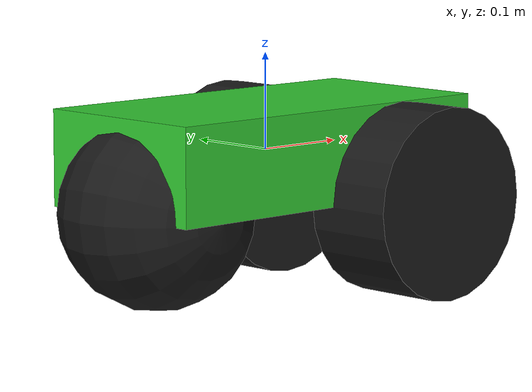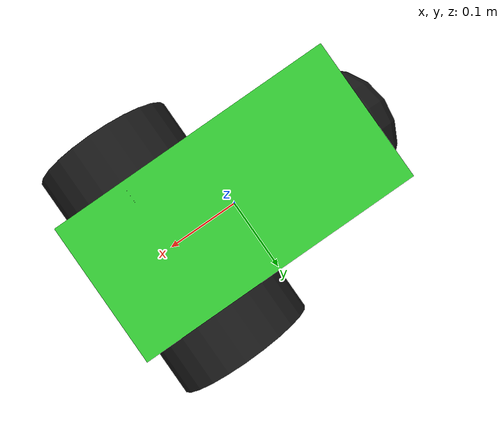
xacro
<?xml version="1.0" ?>

<robot name="larry" xmlns:xacro="http://ros.org/wiki/xacro">
  <!-- Baza -->
  <link name="base_link">
    <visual>
      <geometry>
	<box size="0.4 0.2 0.1" />
      </geometry>
      <material name="green">
	<color rgba="0.2 0.8 0.2 1.0"/>
      </material>
    </visual>
    <collision>
      <geometry>
	<box size="0.4 0.2 0.1" />
      </geometry>
    </collision>
    <inertial>
      <mass value="1.0"/>
      <inertia ixx="0.008" ixy="0.0" ixz="0.0" iyy="0.028" iyz="0.0" izz="0.033"/>
    </inertial>
  </link>

  <link name="left_wheel">
    <visual>
      <geometry>
	<cylinder radius="0.1" length="0.1" />
      </geometry>
      <material name="black">
	<color rgba="0.1 0.1 0.1 1.0"/>
      </material>
    </visual>
    <collision>
      <geometry>
	<cylinder radius="0.1" length="0.05" />
      </geometry>
    </collision>
    <inertial>
      <mass value="0.1"/>
      <inertia ixx="0.001" ixy="0.0" ixz="0.0" iyy="0.001" iyz="0.0" izz="0.001"/>
    </inertial>
  </link>
  <joint name="left_wheel_joint" type="continuous">
    <parent link="base_link"/>
    <child link="left_wheel"/>
    <origin xyz="0.1 0.12 -0.05" rpy="-1.5707 0 0"/>
    <axis xyz="0 0 1"/>
  </joint>

  <link name="right_wheel">
    <visual>
      <geometry>
	<cylinder radius="0.1" length="0.1" />
      </geometry>
      <material name="black">
	<color rgba="0.1 0.1 0.1 1.0"/>
      </material>
    </visual>
    <collision>
      <geometry>
	<cylinder radius="0.1" length="0.05" />
      </geometry>
    </collision>
    <inertial>
      <mass value="0.1"/>
      <inertia ixx="0.001" ixy="0.0" ixz="0.0" iyy="0.001" iyz="0.0" izz="0.001"/>
    </inertial>
  </link>
  <joint name="right_wheel_joint" type="continuous">
    <parent link="base_link"/>
    <child link="right_wheel"/>
    <origin xyz="0.1 -0.12 -0.05" rpy="-1.5707 0 0"/>
    <axis xyz="0 0 1"/>
  </joint>

  <link name="caster">
    <visual>
      <geometry>
	<sphere radius="0.1" />
      </geometry>
      <material name="black">
	<color rgba="0.1 0.1 0.1 1.0"/>
      </material>
    </visual>
    <collision>
      <geometry>
	<sphere radius="0.1" />
      </geometry>
    </collision>
    <inertial>
      <mass value="0.1"/>
      <inertia ixx="0.0001" ixy="0.0" ixz="0.0" iyy="0.0001" iyz="0.0" izz="0.0001"/>
    </inertial>
  </link>
  <joint name="caster_wheel_joint" type="fixed">
    <parent link="base_link"/>
    <child link="caster"/>
    <origin xyz="-0.15 0 -0.05" rpy="-1.5707 0 0"/>
  </joint>
  <gazebo reference="caster">
    <mu1>0.0</mu1>
    <mu2>0.0</mu2>
  </gazebo>

  <gazebo>
    <plugin filename="gz-sim-diff-drive-system" name="gz::sim::systems::DiffDrive">
      <left_joint>left_wheel_joint</left_joint>
      <right_joint>right_wheel_joint</right_joint>
      <wheel_separation>0.24</wheel_separation>
      <wheel_radius>0.1</wheel_radius>
      <topic>cmd_vel</topic>
    </plugin>
  </gazebo>

</robot>
